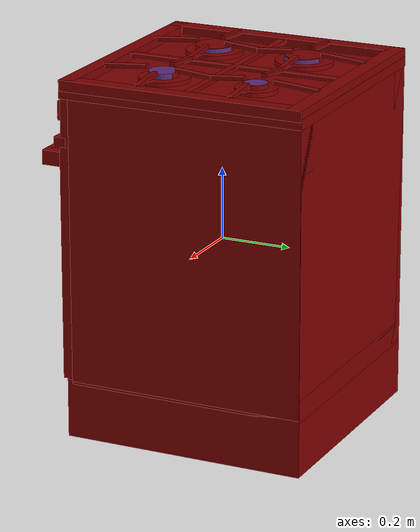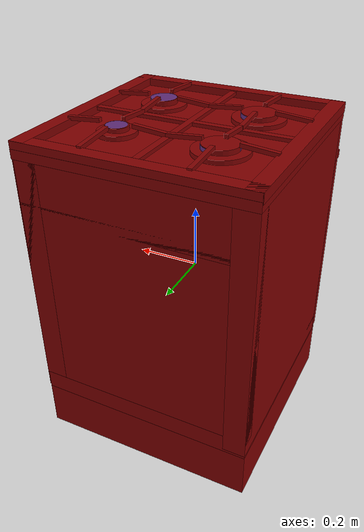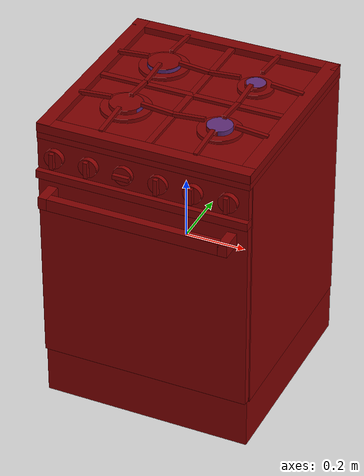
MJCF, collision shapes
<?xml version='1.0' encoding='UTF-8'?>
<mujoco model="model">
  <option timestep="0.002" gravity="0.0 0.0 -9.81"/>
  <compiler angle="radian"/>
  <asset>
    <mesh file="visuals/knob_front_left.obj" name="knob_front_left_vis"/>
    <mesh file="visuals/knob_front_right.obj" name="knob_front_right_vis"/>
    <mesh file="visuals/knob_rear_left.obj" name="knob_rear_left_vis"/>
    <mesh file="visuals/knob_rear_right.obj" name="knob_rear_right_vis"/>
    <mesh file="visuals/Body001.obj" name="Body001_vis"/>
    <mesh file="visuals/Door001.obj" name="Door001_vis"/>
    <mesh file="visuals/Door001_Clear.obj" name="Door001_Clear_vis"/>
    <mesh file="visuals/Knob001.obj" name="Knob001_vis"/>
    <mesh file="visuals/Knob002.obj" name="Knob002_vis"/>
    <mesh file="visuals/Shelf001.obj" name="Shelf001_vis"/>
    <texture file="visuals/T_BC001.png" name="Body001_material" type="2d"/>
    <material name="Body001_material" rgba="1 1 1 1.0" texture="Body001_material" shininess="1" specular="1"/>
    <texture file="visuals/T_BC001.png" name="knob_front_left_material" type="2d"/>
    <material name="knob_front_left_material" rgba="1 1 1 1.0" texture="knob_front_left_material" shininess="1" specular="1"/>
    <texture file="visuals/T_BC001.png" name="knob_front_right_material" type="2d"/>
    <material name="knob_front_right_material" rgba="1 1 1 1.0" texture="knob_front_right_material" shininess="1" specular="1"/>
    <texture file="visuals/T_BC001.png" name="knob_rear_left_material" type="2d"/>
    <material name="knob_rear_left_material" rgba="1 1 1 1.0" texture="knob_rear_left_material" shininess="1" specular="1"/>
    <texture file="visuals/T_BC001.png" name="knob_rear_right_material" type="2d"/>
    <material name="knob_rear_right_material" rgba="1 1 1 1.0" texture="knob_rear_right_material" shininess="1" specular="1"/>
    <texture file="visuals/T_BC001.png" name="Door001_material" type="2d"/>
    <material name="Door001_material" rgba="1 1 1 1.0" texture="Door001_material" shininess="0.5" specular="0.3103448502657381"/>
    <texture file="visuals/T_BC001.png" name="Door001_Clear_material" type="2d"/>
    <material name="Door001_Clear_material" rgba="1 1 1 0.5" texture="Door001_Clear_material" shininess="0.5" specular="0.3103448502657381"/>
    <texture file="visuals/T_BC001.png" name="Knob001_material" type="2d"/>
    <material name="Knob001_material" rgba="1 1 1 1.0" texture="Knob001_material" shininess="1" specular="1"/>
    <texture file="visuals/T_BC001.png" name="Knob002_material" type="2d"/>
    <material name="Knob002_material" rgba="1 1 1 1.0" texture="Knob002_material" shininess="1" specular="1"/>
    <texture file="visuals/T_BC001.png" name="Shelf001_material" type="2d"/>
    <material name="Shelf001_material" rgba="1 1 1 1.0" texture="Shelf001_material" shininess="15" specular="15"/>
  </asset>
  <default>
    <default class="visual">
      <geom conaffinity="0" contype="0" group="1" type="mesh"/>
    </default>
    <default class="collision">
      <geom group="0" rgba="0.5 0 0 0.5"/>
    </default>
    <default class="spawn">
      <geom group="0" rgba="1 1 1 0.5" contype="0" conaffinity="0"/>
      <site group="0" rgba="1 1 1 0.5"/>
    </default>
    <default class="region">
      <geom group="1" conaffinity="0" contype="0" rgba="0 1 0 0"/>
    </default>
  </default>
  <worldbody>
    <body>
      <body name="object">
        <geom mesh="Body001_vis" type="mesh" solimp="0.998 0.998 0.001" solref="0.001 1" friction="0.95 0.3 0.1" class="visual" material="Body001_material"/>
        <geom class="collision" type="box" pos="-0.0017923666164278984 0.042464543133974075 -0.42781656980514526" size="0.34616029262542725 0.3445521593093872 0.08294405788183212" quat="1.0 0.0 0.0 0.0" density="1000.0"/>
        <geom class="collision" type="box" pos="-0.31293293833732605 0.05019332841038704 0.05156845599412918" size="0.03501976281404495 0.3368234634399414 0.40023073554039" quat="1.0 0.0 0.0 0.0" density="1000.0"/>
        <geom class="collision" type="box" pos="0.311211496591568 0.050193291157484055 0.0515684150159359" size="0.0355842299759388 0.33682340383529663 0.40023073554039" quat="1.0 0.0 0.0 0.0" density="1000.0"/>
        <geom class="collision" type="box" pos="-0.001792405964806676 0.05015267804265022 -0.32545188069343567" size="0.34616029262542725 0.3368641138076782 0.03138244152069092" quat="1.0 0.0 0.0 0.0" density="1000.0"/>
        <geom class="collision" type="box" pos="-0.0017924255225807428 0.3635939657688141 0.07309375703334808" size="0.34616032242774963 0.02342277765274048 0.37870535254478455" quat="1.0 0.0 0.0 0.0" density="1000.0"/>
        <geom class="collision" type="box" pos="-0.2846463620662689 0.05137132853269577 -0.02617666684091091" size="0.01465137954801321 0.2769029140472412 0.008648411370813847" quat="1.0 0.0 0.0 0.0" density="1000.0"/>
        <geom class="collision" type="box" pos="0.2828846573829651 0.05137132853269577 -0.02617666684091091" size="0.01465137954801321 0.2769029140472412 0.008648411370813847" quat="1.0 0.0 0.0 0.0" density="1000.0"/>
        <geom class="collision" type="box" pos="-0.001792405964806676 -0.28670698404312134 0.3827654719352722" size="0.34616029262542725 0.024249166250228882 0.06903368979692459" quat="1.0 0.0 0.0 0.0" density="1000.0"/>
        <geom class="collision" type="box" pos="3.4924596548080444e-09 -0.3135274648666382 0.326966792345047" size="0.347952663898468 0.016227228567004204 0.013264309614896774" quat="1.0 0.0 0.0 0.0" density="1000.0"/>
        <geom class="collision" type="box" pos="-0.0003375217493157834 0.037895046174526215 0.46076732873916626" size="0.3482944965362549 0.3508473038673401 0.014134816825389862" quat="1.0 0.0 0.0 0.0" density="1000.0"/>
        <geom class="collision" type="box" pos="-0.0003375217493157834 -0.29191362857818604 0.48257413506507874" size="0.34829458594322205 0.021040046587586403 0.014915712177753448" quat="1.0 0.0 0.0 0.0" density="1000.0"/>
        <geom class="collision" type="box" pos="-0.0003375217493157834 0.366364449262619 0.48257413506507874" size="0.3482946753501892 0.02167058177292347 0.014915714971721172" quat="1.0 0.0 0.0 0.0" density="1000.0"/>
        <geom class="collision" type="box" pos="-0.32732585072517395 0.03813131898641586 0.48257413506507874" size="0.022915590554475784 0.348294734954834 0.014915716834366322" quat="1.0 0.0 0.0 0.0" density="1000.0"/>
        <geom class="collision" type="box" pos="0.32611334323883057 0.03813131898641586 0.48257413506507874" size="0.022705579176545143 0.34829482436180115 0.014915719628334045" quat="1.0 0.0 0.0 0.0" density="1000.0"/>
        <geom class="collision" type="box" pos="-0.0003375217493157834 0.03819167613983154 0.4888884127140045" size="0.010454714298248291 0.31023910641670227 0.005232043564319611" quat="1.0 0.0 0.0 0.0" density="1000.0"/>
        <geom class="collision" type="box" pos="-0.0003375118540134281 0.03819166123867035 0.4888884127140045" size="0.31023916602134705 0.01045488752424717 0.005232044495642185" quat="1.0 0.0 0.0 0.0" density="1000.0"/>
        <geom class="collision" type="box" pos="0.25996196269989014 -0.09668198972940445 0.5021122694015503" size="0.05274287611246109 0.006753944791853428 0.005913717206567526" quat="0.9991114139556885 -5.896202698584289e-16 0.0421474315226078 5.6628746136766495e-09" density="1000.0"/>
        <geom class="collision" type="box" pos="0.054649751633405685 -0.09668198972940445 0.5020796060562134" size="0.05274287611246109 0.006753944791853428 0.005913717206567526" quat="1.2662251265282976e-06 -0.9991114139556885 -4.775268891421547e-08 -0.0421474315226078" density="1000.0"/>
        <geom class="collision" type="box" pos="0.15523815155029297 -0.011466298252344131 0.5032587051391602" size="0.05274287611246109 0.006753944791853428 0.005913717206567526" quat="0.02980356104671955 0.7064785361289978 -0.7064783573150635 0.02980183996260166" density="1000.0"/>
        <geom class="collision" type="box" pos="0.1563403159379959 -0.21117492020130157 0.5023008584976196" size="0.06434283405542374 0.006753944791853428 0.005913717206567526" quat="0.029803572222590446 -0.7064784169197083 -0.706478476524353 -0.029801828786730766" density="1000.0"/>
        <geom class="collision" type="box" pos="0.15538644790649414 0.2878473699092865 0.5023008584976196" size="0.06434283405542374 0.006753944791853428 0.005913717206567526" quat="0.029801825061440468 0.7064783573150635 -0.7064785361289978 0.029803575947880745" density="1000.0"/>
        <geom class="collision" type="box" pos="0.15499939024448395 0.08669628202915192 0.5032587051391602" size="0.05274287611246109 0.006753944791853428 0.005913717206567526" quat="0.029803572222590446 -0.7064784169197083 -0.706478476524353 -0.029801828786730766" density="1000.0"/>
        <geom class="collision" type="box" pos="0.26097947359085083 0.17191199958324432 0.5020796060562134" size="0.05274287611246109 0.006753944791853428 0.005913717206567526" quat="0.042147502303123474 1.2751686995216005e-07 -0.9991114139556885 1.2378882274788339e-06" density="1000.0"/>
        <geom class="collision" type="box" pos="0.05176479369401932 0.17191193997859955 0.5021122694015503" size="0.05274287611246109 0.006753944791853428 0.005913717206567526" quat="7.54207150066577e-08 0.04214750602841377 2.9427349446109474e-09 -0.9991114139556885" density="1000.0"/>
        <geom class="collision" type="box" pos="-0.25894445180892944 0.17191193997859955 0.5021122694015503" size="0.05274287611246109 0.006753944791853428 0.005913717206567526" quat="7.54207150066577e-08 0.04214750602841377 2.9427349446109474e-09 -0.9991114139556885" density="1000.0"/>
        <geom class="collision" type="box" pos="-0.04972976818680763 0.17191199958324432 0.5020796060562134" size="0.05274287611246109 0.006753944791853428 0.005913717206567526" quat="0.042147502303123474 1.2751686995216005e-07 -0.9991114139556885 1.2378882274788339e-06" density="1000.0"/>
        <geom class="collision" type="box" pos="-0.15283583104610443 0.08669628202915192 0.5032587051391602" size="0.05274287611246109 0.006753944791853428 0.005913717206567526" quat="0.029803572222590446 -0.7064784169197083 -0.706478476524353 -0.029801828786730766" density="1000.0"/>
        <geom class="collision" type="box" pos="-0.1538858860731125 0.2878473699092865 0.5023008584976196" size="0.06434283405542374 0.006753944791853428 0.005913717206567526" quat="0.029801825061440468 0.7064783573150635 -0.7064785361289978 0.029803575947880745" density="1000.0"/>
        <geom class="collision" type="box" pos="-0.15261243283748627 -0.21117492020130157 0.5023008584976196" size="0.06434283405542374 0.006753944791853428 0.005913717206567526" quat="0.029803572222590446 -0.7064784169197083 -0.706478476524353 -0.029801828786730766" density="1000.0"/>
        <geom class="collision" type="box" pos="-0.15374012291431427 -0.011466298252344131 0.5032587051391602" size="0.05274287611246109 0.006753944791853428 0.005913717206567526" quat="0.02980356104671955 0.7064785361289978 -0.7064783573150635 0.02980183996260166" density="1000.0"/>
        <geom class="collision" type="box" pos="-0.25826236605644226 -0.09668198972940445 0.5022592544555664" size="0.05487499758601189 0.006753944791853428 0.005913717206567526" quat="1.2662251265282976e-06 -0.9991114139556885 -4.775268891421547e-08 -0.0421474315226078" density="1000.0"/>
        <geom class="collision" type="box" pos="-0.05074727535247803 -0.09668198972940445 0.5021122694015503" size="0.05274287611246109 0.006753944791853428 0.005913717206567526" quat="0.9991114139556885 -5.896202698584289e-16 0.0421474315226078 5.6628746136766495e-09" density="1000.0"/>
        <geom class="collision" type="cylinder" pos="-0.15450254082679749 -0.09712012112140656 0.4763477146625519" size="0.08044295012950897 0.011309492401778698" quat="1.0 0.0 0.0 0.0" density="1000.0"/>
        <geom class="collision" type="cylinder" pos="-0.15450254082679749 0.17260466516017914 0.4763477146625519" size="0.08044295012950897 0.011309492401778698" quat="1.0 0.0 0.0 0.0" density="1000.0"/>
        <geom class="collision" type="cylinder" pos="-0.15450254082679749 -0.09712012112140656 0.49431928992271423" size="0.05308040603995323 0.007462585810571909" quat="1.0 0.0 0.0 0.0" density="1000.0"/>
        <geom class="collision" type="cylinder" pos="-0.15341143310070038 0.17184089124202728 0.49431928992271423" size="0.05308040603995323 0.007462585810571909" quat="1.0 0.0 0.0 0.0" density="1000.0"/>
        <geom class="collision" type="cylinder" pos="0.1554141789674759 0.17260466516017914 0.4797573387622833" size="0.05751175805926323 0.008085590787231922" quat="1.0 0.0 0.0 0.0" density="1000.0"/>
        <geom class="collision" type="cylinder" pos="0.1554141789674759 -0.09608358144760132 0.47660186886787415" size="0.07045555114746094 0.009905361570417881" quat="1.0 0.0 0.0 0.0" density="1000.0"/>
        <geom class="collision" type="cylinder" pos="0.1554141789674759 0.17124076187610626 0.4932335913181305" size="0.03428720310330391 0.007443667855113745" quat="1.0 0.0 0.0 0.0" density="1000.0"/>
        <geom class="collision" type="cylinder" pos="0.1554141789674759 -0.09776119887828827 0.4932335913181305" size="0.04124581813812256 0.008954365737736225" quat="1.0 0.0 0.0 0.0" density="1000.0"/>
        <geom class="collision" type="box" pos="-0.0003473036631476134 0.05096094310283661 0.30711016058921814" size="0.3450537323951721 0.33605578541755676 0.014134816825389862" quat="1.0 0.0 0.0 0.0" density="1000.0"/>
        <body name="knob_front_left">
          <joint axis="0.0 -1.0 0.0" pos="-0.28569862246513367 -0.33146214485168457 0.39514991641044617" limited="true" name="knob_front_left_joint" range="0.0 3.141592653589793" type="hinge" damping="0.05" armature="0.001"/>
          <geom mesh="knob_front_left_vis" type="mesh" solimp="0.998 0.998 0.001" solref="0.001 1" friction="0.95 0.3 0.1" class="visual" material="knob_front_left_material"/>
          <geom class="collision" type="box" pos="-0.2854290306568146 -0.34061720967292786 0.39524558186531067" size="0.006752192508429289 0.007036407478153706 0.026408346369862556" quat="1.0 0.0 0.0 0.0" density="1000.0" name="knob_front_left_main"/>
          <geom class="collision" type="cylinder" pos="-0.2854290306568146 -0.32465749979019165 0.3954122066497803" size="0.030379097908735275 0.009068920277059078" quat="0.7071068286895752 0.7071067690849304 0.0 0.0" density="1000.0"/>
        </body>
        <body name="knob_front_right">
          <joint axis="0.0 -1.0 0.0" pos="0.28548693656921387 -0.33146214485168457 0.39514991641044617" limited="true" name="knob_front_right_joint" range="0.0 3.141592653589793" type="hinge" damping="0.05" armature="0.001"/>
          <geom mesh="knob_front_right_vis" type="mesh" solimp="0.998 0.998 0.001" solref="0.001 1" friction="0.95 0.3 0.1" class="visual" material="knob_front_right_material"/>
          <geom class="collision" type="box" pos="0.28517773747444153 -0.34061720967292786 0.39524558186531067" size="0.0067521920427680016 0.007036406081169844 0.026408344507217407" quat="1.0 0.0 0.0 0.0" density="1000.0" name="knob_front_right_main"/>
          <geom class="collision" type="cylinder" pos="0.28517773747444153 -0.32465749979019165 0.3954122066497803" size="0.030379097908735275 0.009068920277059078" quat="0.7071068286895752 0.7071067690849304 0.0 0.0" density="1000.0"/>
        </body>
        <body name="knob_rear_left">
          <joint axis="0.0 -1.0 0.0" pos="-0.1711650937795639 -0.33146214485168457 0.39514991641044617" limited="true" name="knob_rear_left_joint" range="0.0 3.141592653589793" type="hinge" damping="0.05" armature="0.001"/>
          <geom mesh="knob_rear_left_vis" type="mesh" solimp="0.998 0.998 0.001" solref="0.001 1" friction="0.95 0.3 0.1" class="visual" material="knob_rear_left_material"/>
          <geom class="collision" type="box" pos="-0.1712786853313446 -0.34061720967292786 0.39524558186531067" size="0.006752191111445427 0.0070364042185246944 0.02640834078192711" quat="1.0 0.0 0.0 0.0" density="1000.0" name="knob_rear_left_main"/>
          <geom class="collision" type="cylinder" pos="-0.1712786853313446 -0.32465749979019165 0.3954122066497803" size="0.030379097908735275 0.009068920277059078" quat="0.7071068286895752 0.7071067690849304 0.0 0.0" density="1000.0"/>
        </body>
        <body name="knob_rear_right">
          <joint axis="0.0 -1.0 0.0" pos="0.17117184400558472 -0.33146214485168457 0.39514991641044617" limited="true" name="knob_rear_right_joint" range="0.0 3.141592653589793" type="hinge" damping="0.05" armature="0.001"/>
          <geom mesh="knob_rear_right_vis" type="mesh" solimp="0.998 0.998 0.001" solref="0.001 1" friction="0.95 0.3 0.1" class="visual" material="knob_rear_right_material"/>
          <geom class="collision" type="box" pos="0.17126679420471191 -0.34061720967292786 0.39524558186531067" size="0.006752190180122852 0.0070364028215408325 0.02640833705663681" quat="1.0 0.0 0.0 0.0" density="1000.0" name="knob_rear_right_main"/>
          <geom class="collision" type="cylinder" pos="0.17126679420471191 -0.32465749979019165 0.3954122066497803" size="0.030379097908735275 0.009068920277059078" quat="0.7071068286895752 0.7071067690849304 0.0 0.0" density="1000.0"/>
        </body>
        <body name="Door001">
          <joint axis="1.0 0.0 0.0" pos="-0.0011480797547847033 -0.31221669912338257 -0.3395808935165405" limited="true" name="Door001_joint" range="0.0 1.5707963267948966" type="hinge" damping="1" frictionloss="1" armature=".01" stiffness="0.05"/>
          <geom mesh="Door001_vis" type="mesh" solimp="0.998 0.998 0.001" solref="0.001 1" friction="0.95 0.3 0.1" class="visual" material="Door001_material"/>
          <geom class="collision" type="box" pos="-0.0019542097579687834 -0.30130255222320557 -0.015073235146701336" size="0.34599849581718445 0.012950613163411617 0.3273508548736572" quat="1.0 0.0 0.0 0.0" density="1000.0"/>
          <geom class="collision" type="box" pos="-0.29780131578445435 -0.3501988649368286 0.26562783122062683" size="0.015539824031293392 0.03701944649219513 0.020211882889270782" quat="1.0 0.0 0.0 0.0" density="1000.0"/>
          <geom class="collision" type="box" pos="-0.0019276040839031339 -0.3729130029678345 0.26562783122062683" size="0.282884806394577 0.01430530659854412 0.020211882889270782" quat="1.0 0.0 0.0 0.0" density="1000.0"/>
          <geom class="collision" type="box" pos="0.2937222123146057 -0.3501988649368286 0.26562783122062683" size="0.015539824031293392 0.03701944649219513 0.020211882889270782" quat="1.0 0.0 0.0 0.0" density="1000.0"/>
          <body name="Door001_Clear">
            <geom mesh="Door001_Clear_vis" type="mesh" solimp="0.998 0.998 0.001" solref="0.001 1" friction="0.95 0.3 0.1" class="visual" material="Door001_Clear_material"/>
            <geom class="collision" type="box" pos="-0.0007062967633828521 -0.29978299140930176 -0.013628222048282623" size="0.2522139549255371 0.011011546477675438 0.23612838983535767" quat="1.0 0.0 0.0 0.0" density="1000.0"/>
          </body>
        </body>
        <body name="Knob001">
          <joint axis="0.0 1.0 0.0" pos="-0.056845419108867645 -0.33146214485168457 0.39511838555336" limited="true" name="Knob001_joint" range="0.0 5.235987755982989" type="hinge" damping="0.05" armature="0.001"/>
          <geom mesh="Knob001_vis" type="mesh" solimp="0.998 0.998 0.001" solref="0.001 1" friction="0.95 0.3 0.1" class="visual" material="Knob001_material"/>
          <geom class="collision" type="box" pos="-0.057257600128650665 -0.33609965443611145 0.39488252997398376" size="0.026734568178653717 0.007123332004994154 0.006835603620857" quat="1.0 0.0 0.0 0.0" density="1000.0"/>
          <geom class="collision" type="cylinder" pos="-0.05742628499865532 -0.32165399193763733 0.39488252997398376" size="0.030754350125789642 0.007469835691154003" quat="0.7071068286895752 0.7071067690849304 0.0 0.0" density="1000.0"/>
        </body>
        <body name="Knob002">
          <joint axis="0.0 1.0 0.0" pos="0.056451503187417984 -0.33146214485168457 0.3945634961128235" limited="true" name="Knob002_joint" range="0.0 5.585053606381854" type="hinge" damping="0.05" armature="0.001"/>
          <geom mesh="Knob002_vis" type="mesh" solimp="0.998 0.998 0.001" solref="0.001 1" friction="0.95 0.3 0.1" class="visual" material="Knob002_material"/>
          <geom class="collision" type="box" pos="0.056680720299482346 -0.33609965443611145 0.3941341042518616" size="0.006835602223873138 0.007123332004994154 0.026734568178653717" quat="1.0 0.0 0.0 0.0" density="1000.0"/>
          <geom class="collision" type="cylinder" pos="0.056680720299482346 -0.3220304548740387 0.3943028151988983" size="0.030754350125789642 0.00709338067099452" quat="0.7071068286895752 0.7071067690849304 0.0 0.0" density="1000.0"/>
        </body>
        <body name="Shelf001">
          <joint axis="0.0 -1.0 0.0" pos="-0.000848837080411613 0.049323372542858124 -0.013735120184719563" limited="true" name="Shelf001_joint" range="0.0 0.45" type="slide" damping="1" frictionloss="1" armature=".01" stiffness="0.05"/>
          <geom mesh="Shelf001_vis" type="mesh" solimp="0.998 0.998 0.001" solref="0.001 1" friction="0.95 0.3 0.1" class="visual" material="Shelf001_material"/>
          <geom class="collision" type="box" pos="-0.0006172017892822623 0.049187831580638885 -0.013703279197216034" size="0.27567464113235474 0.26948490738868713 0.002425199607387185" quat="1.0 0.0 0.0 0.0" density="1000.0"/>
        </body>
        <geom class="region" name="reg_int" type="box" pos="-0.0010311901569366455 0.029155448079109192 -0.00011740624904632568" size="0.2798033654689789 0.31382037699222565 0.2950272709131241"/>
        <site type="cylinder" rgba="0.3 0.4 1 0.5" size="0.053694795817136765 0.0060655721463263035" pos="-0.15276554226875305 0.1709509640932083 0.49368366599082947" name="burner_on_rear_left"/>
        <site type="cylinder" rgba="0.3 0.4 1 0.5" size="0.05139588937163353 0.0074625881388783455" pos="-0.15209466218948364 -0.09570489078760147 0.49290987849235535" name="burner_on_front_left"/>
        <site type="cylinder" rgba="0.3 0.4 1 0.5" size="0.040797363966703415 0.008547496981918812" pos="0.15652941167354584 -0.0980200245976448 0.4940885305404663" name="burner_on_front_right"/>
        <site type="cylinder" rgba="0.3 0.4 1 0.5" size="0.031349461525678635 0.008033190853893757" pos="0.15635548532009125 0.17238275706768036 0.49309876561164856" name="burner_on_rear_right"/>
        <site name="burner_rear_left_place_site" type="cylinder" rgba="0.3 0.4 1 0" size="0.053694795817136765 0.0060655721463263035" pos="-0.15276554226875305 0.1709509640932083 0.49368366599082947"/>
        <site name="burner_front_left_place_site" type="cylinder" rgba="0.3 0.4 1 0" size="0.05139588937163353 0.0074625881388783455" pos="-0.15209466218948364 -0.09570489078760147 0.49290987849235535"/>
        <site name="burner_front_right_place_site" type="cylinder" rgba="0.3 0.4 1 0" size="0.040797363966703415 0.008547496981918812" pos="0.15652941167354584 -0.0980200245976448 0.4940885305404663"/>
        <site name="burner_rear_right_place_site" type="cylinder" rgba="0.3 0.4 1 0" size="0.031349461525678635 0.008033190853893757" pos="0.15635548532009125 0.17238275706768036 0.49309876561164856"/>
        <geom class="region" name="reg_main" type="box" pos="-7.450580596923828e-09 0.035772278904914856 -0.029480665922164917" size="0.347952663898468 0.3512444496154785 0.4812798500061035"/>
      </body>
    </body>
  </worldbody>
  <actuator>
    <motor name="knob_front_left_joint_actuator" joint="knob_front_left_joint" gear="10"/>
    <motor name="knob_front_right_joint_actuator" joint="knob_front_right_joint" gear="10"/>
    <motor name="knob_rear_left_joint_actuator" joint="knob_rear_left_joint" gear="10"/>
    <motor name="knob_rear_right_joint_actuator" joint="knob_rear_right_joint" gear="10"/>
    <motor name="Door001_joint_actuator" joint="Door001_joint" gear="50"/>
    <motor name="Knob001_joint_actuator" joint="Knob001_joint" gear="50"/>
    <motor name="Knob002_joint_actuator" joint="Knob002_joint" gear="50"/>
    <motor name="Shelf001_joint_actuator" joint="Shelf001_joint" gear="50"/>
  </actuator>
</mujoco>
